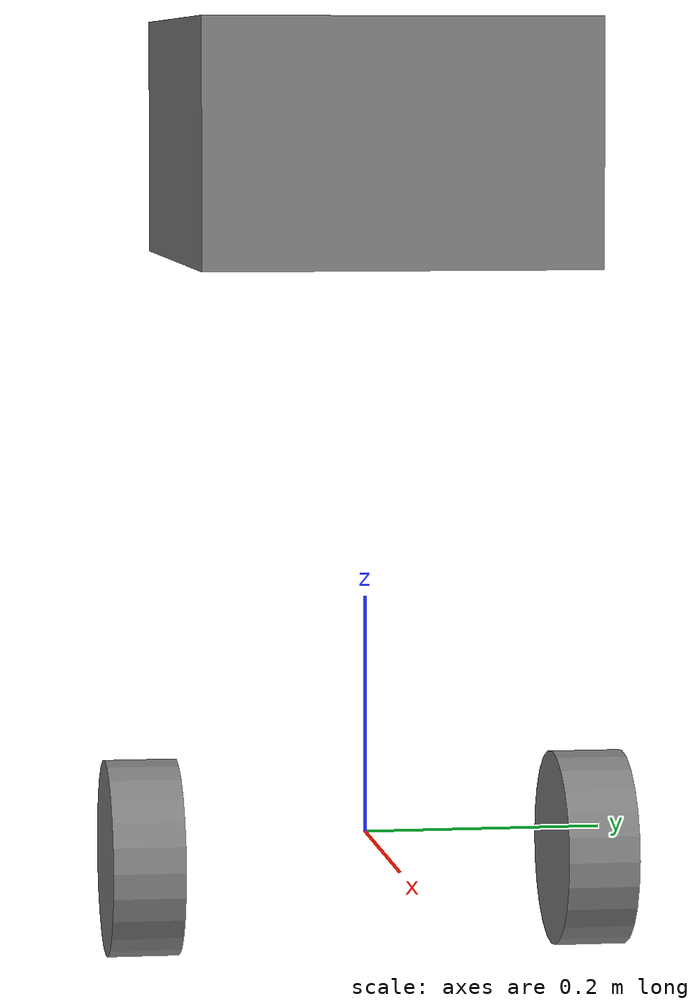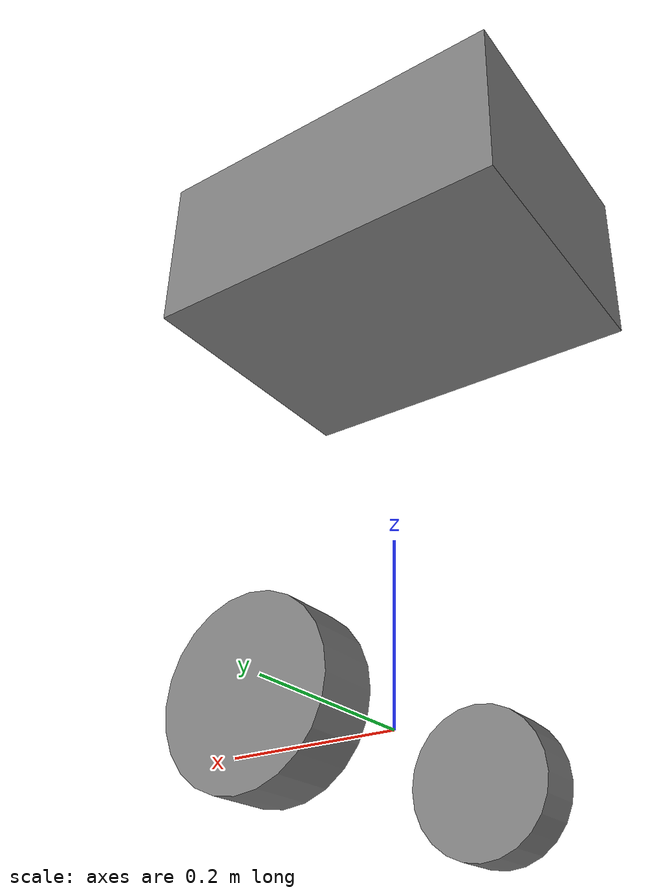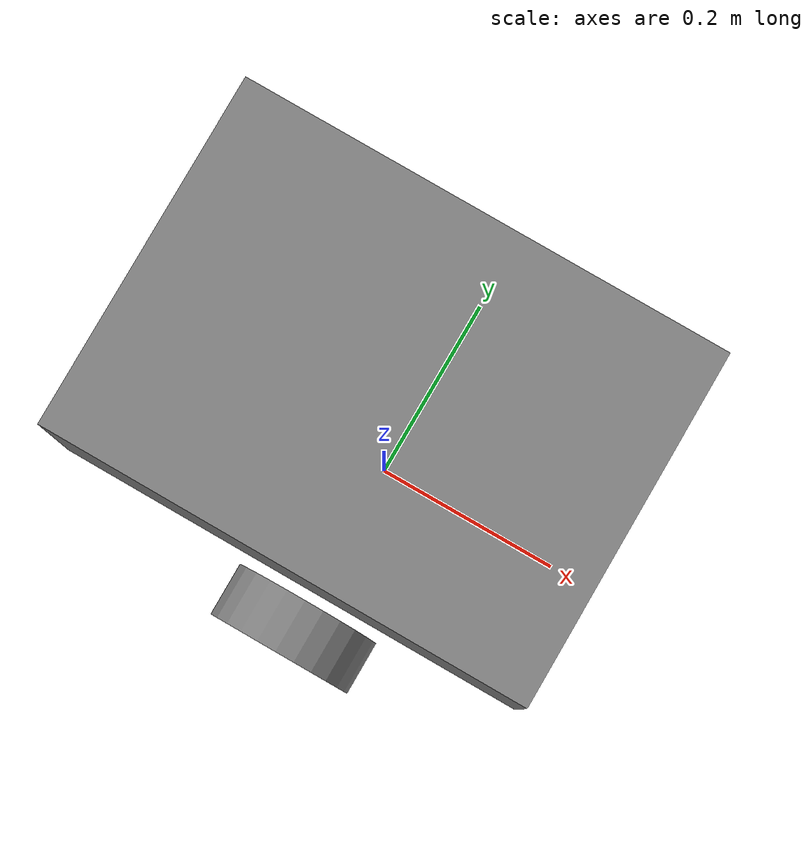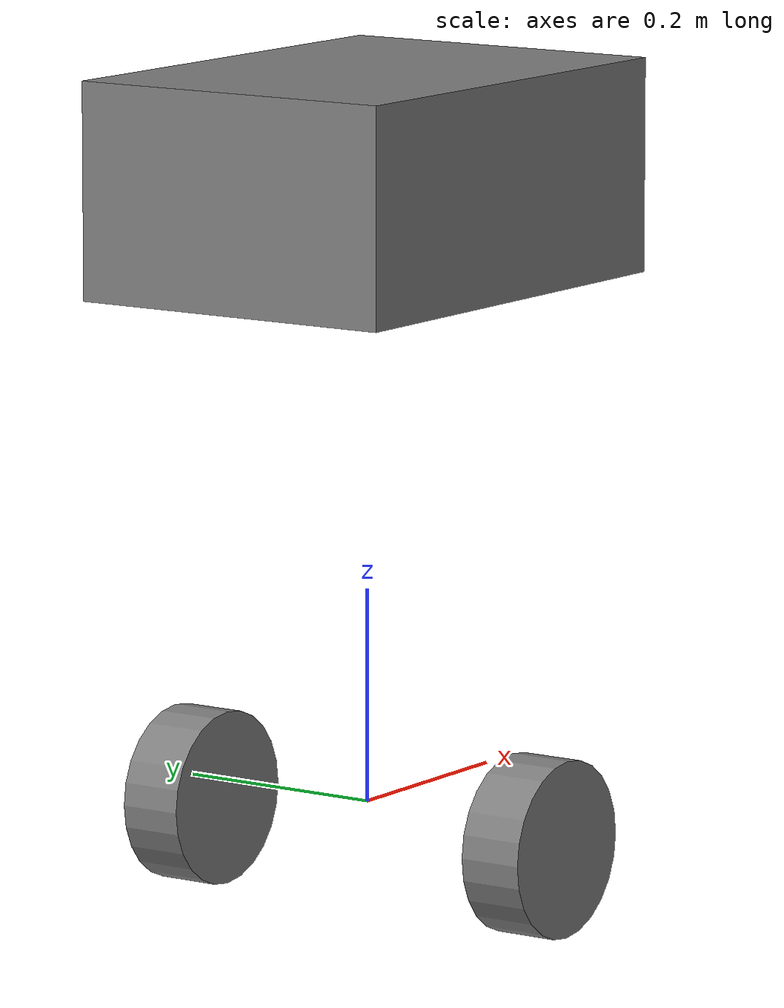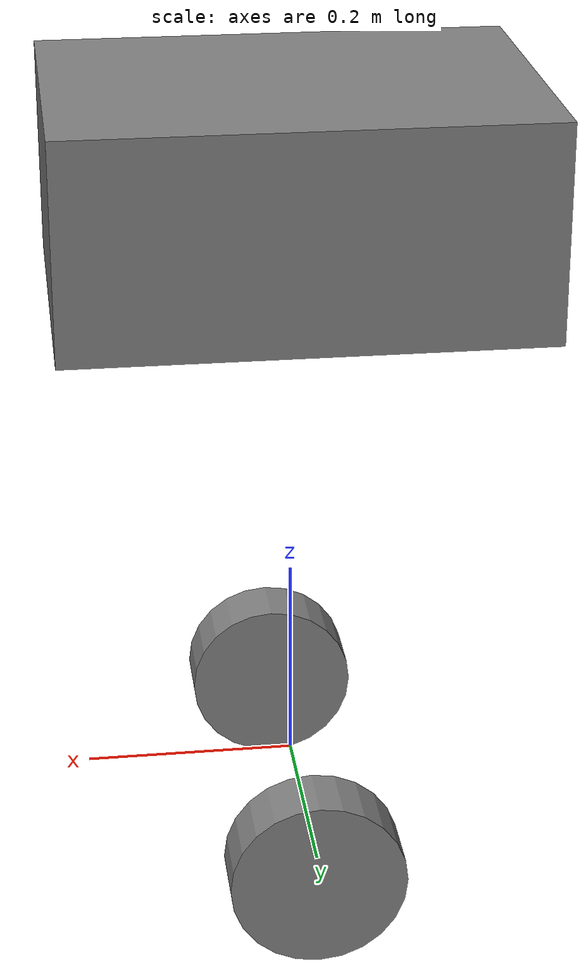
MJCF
<mujoco model="robot">
  <default>
    <default class="robot/"/>
    </default>
  <worldbody>
    <body name="body_chassis_" pos="0 0 0.58250000000000002" euler="0 0 0">
      <camera name="camera_track_chassis_" class="robot/" mode="track" pos="0 -3 1" zaxis="0 -1 0.5"/>
      <geom name="geom_chassis_" class="robot/" type="box" size="0.22 0.16 0.10000000000000001" mass="10"/>
      <site name="right_site_chassis_" class="robot/" size="9.9999999999999995e-07 9.9999999999999995e-07 9.9999999999999995e-07" pos="0 -0.16 -0.59999999999999998"/>
      <body pos="0 -0.16 -0.59999999999999998" name="right_tire/">
        <body name="right_tire/body_tire_right">
          <geom name="right_tire/geom_tire_right" class="robot/" type="cylinder" condim="6" priority="1" size="0.082500000000000004 0.029999999999999999" friction="0.095000000000000001 0.0050000000000000001 0.0001" mass="1" pos="0 -0.029999999999999999 0" euler="90 0 0"/>
          <joint name="right_tire/joint_tire_right" class="robot/" type="hinge" axis="0 1 0" damping="0.050000000000000003"/>
        </body>
      </body>
      <site name="left_site_chassis_" class="robot/" size="9.9999999999999995e-07 9.9999999999999995e-07 9.9999999999999995e-07" pos="0 0.16 -0.59999999999999998" euler="0 0 180"/>
      <body pos="0 0.16 -0.59999999999999998" euler="0 0 180" name="left_tire/">
        <body name="left_tire/body_tire_left">
          <geom name="left_tire/geom_tire_left" class="robot/" type="cylinder" condim="6" priority="1" size="0.082500000000000004 0.029999999999999999" friction="0.095000000000000001 0.0050000000000000001 0.0001" mass="1" pos="0 -0.029999999999999999 0" euler="90 0 0"/>
          <joint name="left_tire/joint_tire_left" class="robot/" type="hinge" axis="0 1 0" damping="0.050000000000000003"/>
        </body>
      </body>
      <freejoint name="free_floating_chassis_"/>
      <site name="imu" class="robot/" size="9.9999999999999995e-07 9.9999999999999995e-07 9.9999999999999995e-07" pos="0 0 0"/>
    </body>
    <light name="spotlight_0" class="robot/" mode="targetbodycom" target="body_chassis_" pos="0.23000000000000001 0.17000000000000001 0.11"/>
    <light name="spotlight_1" class="robot/" mode="targetbodycom" target="body_chassis_" pos="0.23000000000000001 -0.17000000000000001 0.11"/>
    <light name="spotlight_2" class="robot/" mode="targetbodycom" target="body_chassis_" pos="-0.23000000000000001 0.17000000000000001 0.11"/>
    <light name="spotlight_3" class="robot/" mode="targetbodycom" target="body_chassis_" pos="-0.23000000000000001 -0.17000000000000001 0.11"/>
  </worldbody>
  <actuator>
    <velocity name="left_tire/act" class="robot/" joint="left_tire/joint_tire_left" kv="10"/>
    <velocity name="right_tire/act" class="robot/" joint="right_tire/joint_tire_right" kv="10"/>
  </actuator>
  <sensor>
    <gyro name="_gyro" site="imu"/>
    <accelerometer name="_accelerometer" site="imu"/>
    <magnetometer name="_magnetometer" site="imu"/>
    <framequat name="_orientation" objtype="site" objname="imu"/>
    <jointpos name="left_tire/pos" noise="0.080000000000000002" joint="left_tire/joint_tire_left"/>
    <jointvel name="left_tire/vel" noise="0.080000000000000002" joint="left_tire/joint_tire_left"/>
    <jointpos name="right_tire/pos" noise="0.080000000000000002" joint="right_tire/joint_tire_right"/>
    <jointvel name="right_tire/vel" noise="0.080000000000000002" joint="right_tire/joint_tire_right"/>
  </sensor>
</mujoco>
